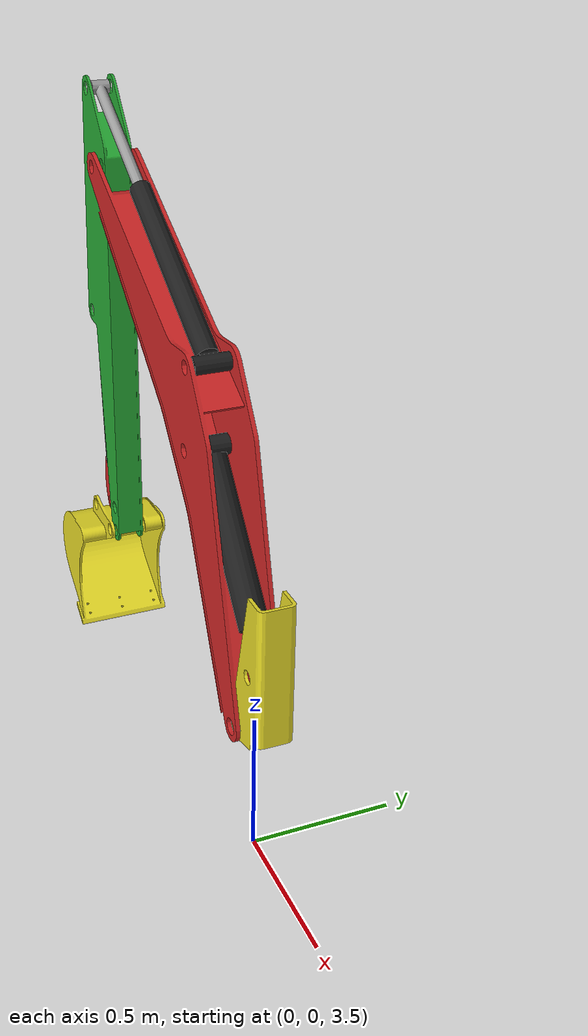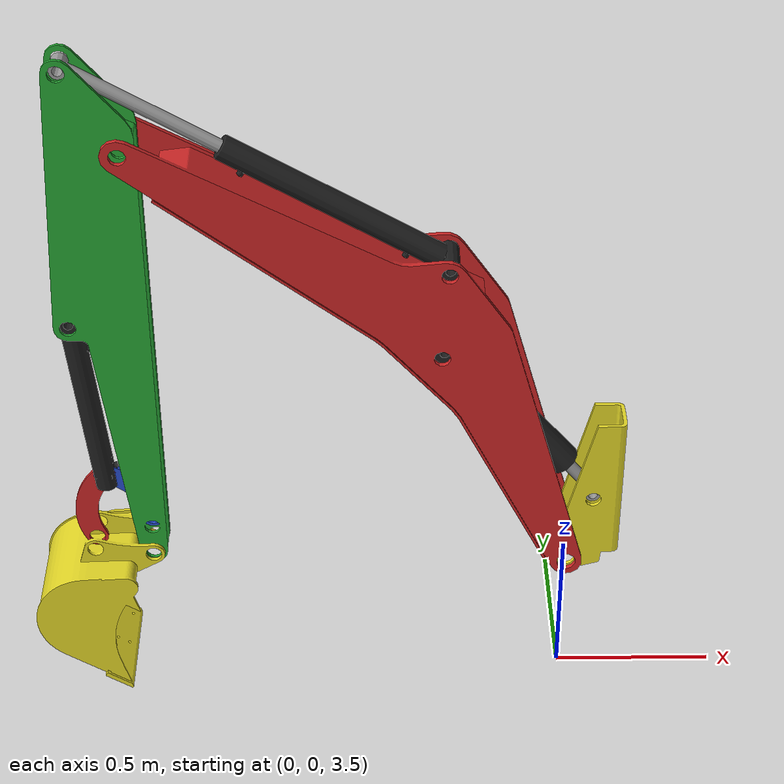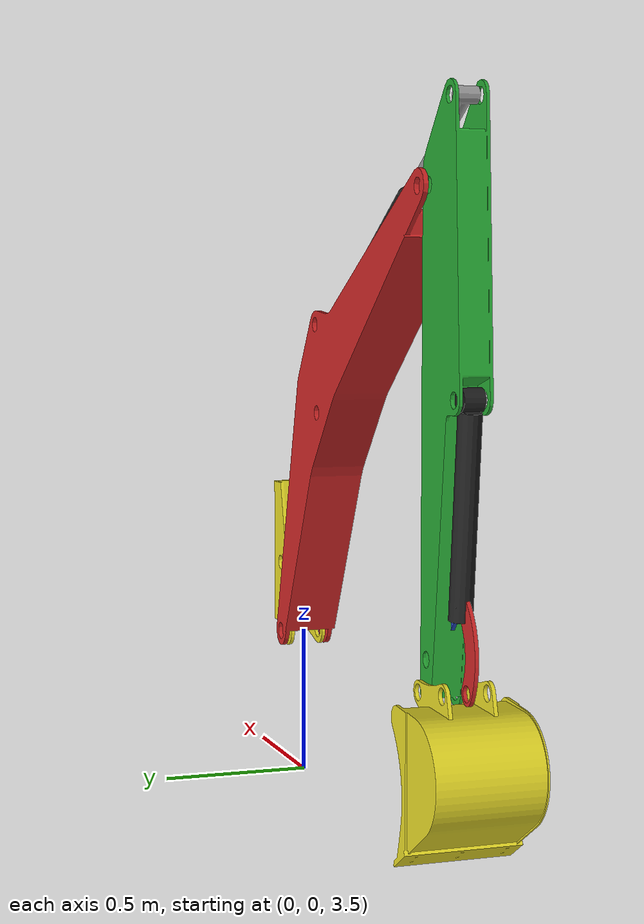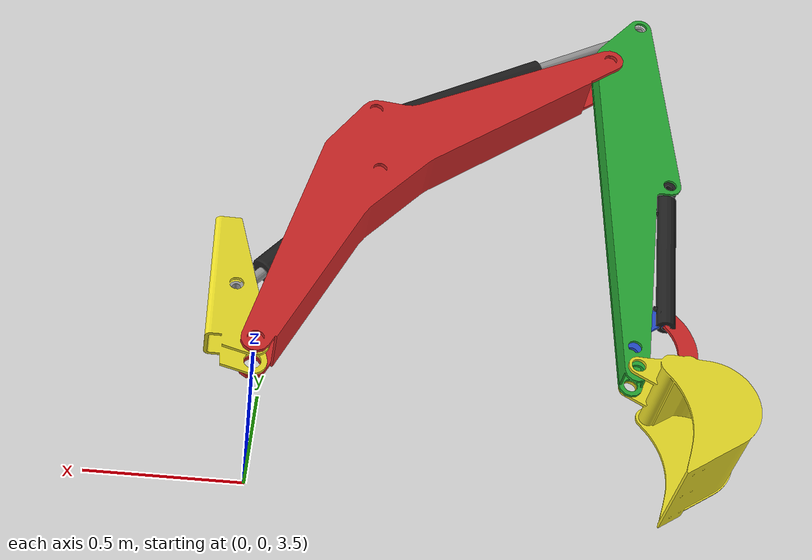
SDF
<?xml version="1.0" ?>
<sdf version='1.5'>
  <model name='backhoe_arm_assembly'>
    <pose>0 0 4  0 0 0</pose>

  <link name="konsol">
     <inertial>
        <mass></mass>
        <inertia>
            <ixx></ixx>
            <iyy></iyy>
            <izz></izz>
        </inertia>
     </inertial>
     <pose>0 0 0 0 0 0</pose>
     <collision name="collision1">
       <pose>0.03 0 0 0 0 0</pose>
       <geometry>
         <box>
           <size> 0.160 0.130 0.100 </size>
         </box>
       </geometry>
     </collision>
     <collision name="collision2">
       <pose>0.10 0 0.250 0 0 0</pose>
       <geometry>
         <box>
           <size> 0.1 0.130 0.450 </size>
         </box>
       </geometry>
     </collision>
     <visual name="visual">
       <pose>0 0 0 0 0 0</pose>
       <geometry>
         <mesh>
           <uri>model://backhoe/meshes/konsol.stl</uri>
           <scale>0.001 0.001 0.001</scale>
         </mesh>
       </geometry>
         <material>
           <script>
             <name>Gazebo/Yellow</name>
           </script>
         </material>
     </visual>
   </link>

  <link name="arm1">
     <pose>0 0 0 0 0 0</pose>

     <collision name="collision_base">
       <pose> -0.2 0 0.5 0 -0.349065 0</pose>
        <geometry>
         <box>
           <size> 0.20 0.150 1.10 </size>
         </box>
       </geometry>
     </collision>

     <collision name="collision_circle">
       <pose> -0.40 0 0.95 1.570796326 0  0</pose>
       <geometry>
         <cylinder>
              <radius>0.2</radius>
              <length>0.150</length>
         </cylinder>
       </geometry>
     </collision>

     <collision name="collision_base">
       <pose> -0.80 0 1.20 0 -1.047197551 0</pose>
        <geometry>
         <box>
           <size> 0.150 0.150 1.20 </size>
         </box>
       </geometry>
     </collision>

     <visual name="visual">
       <pose>0 0 0 3.1415926  -0.462512251778  0</pose>
       <geometry>
         <mesh>
           <uri>model://backhoe/meshes/arm1.dae</uri>
         </mesh>
       </geometry>
         <material>
           <script>
             <name>Gazebo/Red</name>
           </script>
         </material>
     </visual>
   </link>

  <link name="arm2">

   <pose> -1.29972 0 1.47750 0 0 0</pose>

    <collision name="collision1">
       <pose>0 0 -0.4 0 0 0</pose>
       <geometry>
         <box>
           <size> 0.1 0.15 1.0 </size>
         </box>
       </geometry>
     </collision>

    <collision name="collision2">
       <pose>-0.08 0 -1 0  -0.174530 0</pose>
       <geometry>
         <box>
           <size> 0.1 0.15 1.0 </size>
         </box>
       </geometry>
     </collision>

    <collision name="collision3">
       <pose> -0.15 0 -0.2 0 0 0</pose>
       <geometry>
         <box>
           <size> 0.2 0.15 0.9 </size>
         </box>
       </geometry>
     </collision>

     <visual name="visual">
       <pose> 0 0 0 0 -1.5707960 0</pose>
       <geometry>/
         <mesh>
           <uri>model://backhoe/meshes/arm2.stl</uri>
         </mesh>
       </geometry>
         <material>
           <script>
             <name>Gazebo/Green</name>
           </script>
         </material>
     </visual>

  </link>

  <link name="skovl">
    <pose>   -1.29972 0 0.1375 3.1415927 0.89448124 0</pose>

    <collision name="collision">
       <pose> 0 0 0.1 0  0.26179938 0</pose>
       <geometry>
         <box>
           <size> 0.15 0.02 0.32 </size>
         </box>
       </geometry>
     </collision>

    <visual name="visual">
        <geometry>
           <mesh>
             <uri>model://backhoe/meshes/skovl.stl</uri>
           </mesh>
        </geometry>
        <material>
          <script>
             <name>Gazebo/Blue</name>
          </script>
        </material>
   </visual>

  </link>

  <link name="nedre">
      <pose>-1.48072 0 0.0625 3.1415927 -2.17729824186292 0  </pose>
      <visual name="visual">
        <geometry>
           <mesh>
             <uri>model://backhoe/meshes/nedre.stl</uri>
           </mesh>
        </geometry>
        <material>
          <script>
             <name>Gazebo/Red</name>
          </script>
        </material>
       </visual>

       <collision name="collision">
          <pose>   </pose>
          <geometry>
             <box>
                <size> 0.100 0.020 0.350 </size>
             </box>
          </geometry>
       </collision>

  </link>

  <link name="shovel">
      <pose>-1.29972 0 0.0375  -1.5707960  0 0 </pose>
       <!-- axis inversion put -z value in 2 column and y value in 3rd column -->
       <collision name="collision">
          <pose>-0.175 0.25 0 0 0 0 </pose>
          <geometry>
             <box>
                <size> 0.400 0.5  0.350 </size>
             </box>
          </geometry>
       </collision>

     <visual name="visual">
        <pose> 0 0 0 0 0 0</pose>
        <geometry>
           <mesh>
             <uri>model://backhoe/meshes/shovel.stl</uri>
             <scale>0.001 0.001 0.001 </scale>
           </mesh>
        </geometry>
        <material>
          <script>
             <name>Gazebo/Yellow</name>
          </script>
        </material>
       </visual>

  </link>

<!--

================
Acutators
===============

-->

    <link name="cylinder1">
      <pose>-0.3941 0 0.79256 0 -2.26892802 0</pose>
      <collision name="collision">
        <pose>-0.295 0 0 0 -1.5708 0</pose>
        <geometry>
          <cylinder>
            <radius>0.05</radius>
            <length>0.59</length>
          </cylinder>
        </geometry>
      </collision>
      <visual name="visual">
        <geometry>
            <mesh>
             <uri>model://backhoe/meshes/cylinder1.stl</uri>
           </mesh>
        </geometry>
        <material>
          <script>
            <name>Gazebo/Black</name>
          </script>
        </material>
      </visual>
    </link>

    <link name="rod1">
      <pose>0.076 0 0.2325 0 -0.6982928 0</pose>
      <collision name="collision">
        <pose>0 0 0.280 0 0 0</pose>
        <geometry>
          <cylinder>
            <radius>0.022</radius>
            <length>0.560</length>
          </cylinder>
        </geometry>
      </collision>
      <visual name="visual">
        <geometry>
            <mesh>
             <uri>model://backhoe/meshes/rod1.stl</uri>
           </mesh>
        </geometry>
        <material>
          <script>
            <name>Gazebo/Grey</name>
          </script>
        </material>
      </visual>
    </link>

    <link name="cylinder2">
      <pose> -0.3805 0 1.079  0 -1.0369422 0</pose>
      <collision name="collision">
        <pose>0 0 0.375 0 0 0</pose>
        <geometry>
          <cylinder>
            <radius>0.04</radius>
            <length>0.750</length>
          </cylinder>
        </geometry>
      </collision>
      <visual name="visual">
        <geometry>
            <mesh>
             <uri>model://backhoe/meshes/cylinder2.stl</uri>
           </mesh>
        </geometry>
        <material>
          <script>
            <name>Gazebo/Black</name>
          </script>
        </material>
      </visual>
    </link>

    <link name="rod2">
      <pose>-1.44971 0 1.7125 0 -4.1785349 0</pose>
      <collision name="collision">
        <pose> 0 0 0.350 0 0 0 </pose>
        <geometry>
          <cylinder>
            <radius>0.022</radius>
            <length>0.7</length>
          </cylinder>
        </geometry>
      </collision>
      <visual name="visual">
        <pose>0 0 0 0 0 0 </pose>
        <geometry>
            <mesh>
             <uri>model://backhoe/meshes/rod2.stl</uri>
           </mesh>
        </geometry>
        <material>
          <script>
            <name>Gazebo/Grey</name>
          </script>
        </material>
      </visual>
    </link>

    <link name="cylinder3">
      <pose> -1.49612 0 0.88350 0 -3.24107642 0 </pose>
      <collision name="collision">
        <pose>0 0 0.3125 0 0 0</pose>
        <geometry>
          <cylinder>
            <radius>0.04</radius>
            <length>0.625</length>
          </cylinder>
        </geometry>
      </collision>
      <visual name="visual">
        <geometry>
            <mesh>
             <uri>model://backhoe/meshes/cylinder3.stl</uri>
           </mesh>
        </geometry>
        <material>
          <script>
            <name>Gazebo/Black</name>
          </script>
        </material>
      </visual>
    </link>

    <link name="rod3">
      <pose>-1.438 0 0.309 0 -0.099483767 0</pose>
      <collision name="collision">
        <pose> 0 0 0.2275 0 0 0</pose>
        <geometry>
          <cylinder>
            <radius>0.015</radius>
            <length>0.475</length>
          </cylinder>
        </geometry>
      </collision>
      <visual name="visual">
        <geometry>
            <mesh>
             <uri>model://backhoe/meshes/rod3.stl</uri>
           </mesh>
        </geometry>
        <material>
          <script>
            <name>Gazebo/Grey</name>
          </script>
        </material>
      </visual>
    </link>

<!--

===========================================
 Prismatic  JOINTS
===========================================
-->

    <joint name='cylinder1_rod1' type='prismatic'>
      <pose>0 0 0.0 0 0 0</pose>
      <child>cylinder1</child>
      <parent>rod1</parent>
      <axis>
        <xyz>-1 0 0</xyz>
        <limit>
          <lower>-0.3</lower>
          <upper>0.147</upper>
          <effort>10000</effort>
          <velocity>0</velocity>
        </limit>
        <dynamics>
          <spring_reference>0</spring_reference>
          <spring_stiffness>0</spring_stiffness>
          <damping>30</damping>
        </dynamics>
        <use_parent_model_frame>0</use_parent_model_frame>
      </axis>
        <physics>
          <ode>
            <implicit_spring_damper>1</implicit_spring_damper>
          </ode>
        </physics>
    </joint>

    <joint name='cylinder2_rod2' type='prismatic'>
      <pose>0 0 0.0 0 0 0</pose>
      <child>cylinder2</child>
      <parent>rod2</parent>
      <axis>
        <xyz>0 0 1</xyz>
        <limit>
          <lower>-0.0168</lower>
          <upper>0.43925</upper>
          <effort>10000</effort>
          <velocity>0</velocity>
        </limit>
        <dynamics>
          <spring_reference>0</spring_reference>
          <spring_stiffness>0</spring_stiffness>
          <damping>30</damping>
        </dynamics>
        <use_parent_model_frame>0</use_parent_model_frame>
      </axis>
        <physics>
          <ode>
            <implicit_spring_damper>1</implicit_spring_damper>
          </ode>
        </physics>
    </joint>

    <joint name='cylinder3_rod3' type='prismatic'>
      <pose>0 0 0.0 0 0 0</pose>
      <child>cylinder3</child>
      <parent>rod3</parent>
      <axis>
        <xyz>0 0 1</xyz>
        <limit>
          <lower>-0.3755</lower>
          <upper>-0.01</upper>
          <effort>10000</effort>
          <velocity>0</velocity>
        </limit>
        <dynamics>
          <spring_reference>0</spring_reference>
          <spring_stiffness>0</spring_stiffness>
          <damping>30</damping>
        </dynamics>
        <use_parent_model_frame>0</use_parent_model_frame>
      </axis>
        <physics>
          <ode>
            <implicit_spring_damper>1</implicit_spring_damper>
          </ode>
        </physics>
    </joint>

<!--
===========================================
 Revolute  JOINTS
===========================================
-->

    <joint name='world' type='revolute'>
      <pose>0 0 0 0 0 0</pose>
      <child>konsol</child>
      <parent>world</parent>
      <axis>
        <xyz>0 1 0</xyz>
        <limit>
          <lower>0</lower>
          <upper>0</upper>
          <effort>0</effort>
          <velocity>0</velocity>
        </limit>
        <dynamics>
          <spring_reference>0</spring_reference>
          <spring_stiffness>0</spring_stiffness>
        </dynamics>
        <use_parent_model_frame>0</use_parent_model_frame>
      </axis>
    </joint>

    <joint name='Konsol_arm1' type='revolute'>
      <pose>0 0 0 0 0 0</pose>
      <child>arm1</child>
      <parent>konsol</parent>
      <axis>
        <xyz>0 1 0</xyz>
        <limit>
          <lower>-180</lower>
          <upper>180</upper>
          <effort>0</effort>
          <velocity>0</velocity>
        </limit>
        <dynamics>
          <spring_reference>0</spring_reference>
          <spring_stiffness>0</spring_stiffness>
          <damping>1</damping>
        </dynamics>
        <use_parent_model_frame>0</use_parent_model_frame>
      </axis>
        <physics>
          <ode>
            <implicit_spring_damper>1</implicit_spring_damper>
          </ode>
        </physics>
    </joint>

    <joint name='arm2_arm1' type='revolute'>
      <pose> 0 0 0 0 0 0</pose>
      <child>arm2</child>
      <parent>arm1</parent>
      <axis>
        <xyz>0 1 0</xyz>
        <limit>
          <lower>-180</lower>
          <upper>180</upper>
          <effort>0</effort>
          <velocity>0</velocity>
        </limit>
        <dynamics>
          <spring_reference>0</spring_reference>
          <spring_stiffness>0</spring_stiffness>
          <damping>1</damping>
        </dynamics>
        <use_parent_model_frame>0</use_parent_model_frame>
      </axis>
        <physics>
          <ode>
            <implicit_spring_damper>1</implicit_spring_damper>
          </ode>
        </physics>
    </joint>

    <joint name='Konsol_rod1' type='revolute'>
      <pose> 0 0 0 0 0 0 </pose>
      <child>rod1</child>
      <parent>konsol</parent>
      <axis>
        <xyz>0 1 0</xyz>
        <limit>
          <lower>-180</lower>
          <upper>180</upper>
          <effort>0</effort>
          <velocity>0</velocity>
        </limit>
        <dynamics>
          <spring_reference>0</spring_reference>
          <spring_stiffness>0</spring_stiffness>
          <damping>1</damping>
        </dynamics>
        <use_parent_model_frame>0</use_parent_model_frame>
      </axis>
        <physics>
          <ode>
            <implicit_spring_damper>1</implicit_spring_damper>
          </ode>
        </physics>
    </joint>

    <joint name='arm1_cylinder1' type='revolute'>
      <pose> 0 0 0 0 0 0 </pose>
      <child>cylinder1</child>
      <parent>arm1</parent>
      <axis>
        <xyz>0 1 0</xyz>
        <limit>
          <lower>-180</lower>
          <upper>180</upper>
          <effort>0</effort>
          <velocity>0</velocity>
        </limit>
        <dynamics>
          <spring_reference>0</spring_reference>
          <spring_stiffness>0</spring_stiffness>
          <damping>1</damping>
        </dynamics>
        <use_parent_model_frame>0</use_parent_model_frame>
      </axis>
        <physics>
          <ode>
            <implicit_spring_damper>1</implicit_spring_damper>
          </ode>
        </physics>
    </joint>

    <joint name='arm2_rod2' type='revolute'>
      <pose> 0 0 0 0 0 0 </pose>
      <child>rod2</child>
      <parent>arm2</parent>
      <axis>
        <xyz>0 1 0</xyz>
        <limit>
          <lower>-180</lower>
          <upper>180</upper>
          <effort>0</effort>
          <velocity>0</velocity>
        </limit>
        <dynamics>
          <spring_reference>0</spring_reference>
          <spring_stiffness>0</spring_stiffness>
          <damping>1</damping>
        </dynamics>
        <use_parent_model_frame>0</use_parent_model_frame>
      </axis>
        <physics>
          <ode>
            <implicit_spring_damper>1</implicit_spring_damper>
          </ode>
        </physics>
    </joint>

    <joint name='arm1_cylinder2' type='revolute'>
      <pose> 0 0 0 0 0 0 </pose>
      <child>cylinder2</child>
      <parent>arm1</parent>
      <axis>
        <xyz>0 1 0</xyz>
        <limit>
          <lower>-180</lower>
          <upper>180</upper>
          <effort>0</effort>
          <velocity>0</velocity>
        </limit>
        <dynamics>
          <spring_reference>0</spring_reference>
          <spring_stiffness>0</spring_stiffness>
          <damping>1</damping>
        </dynamics>
        <use_parent_model_frame>0</use_parent_model_frame>
      </axis>
        <physics>
          <ode>
            <implicit_spring_damper>1</implicit_spring_damper>
          </ode>
        </physics>
    </joint>

    <joint name='arm2_cylinder3' type='revolute'>
      <pose> 0 0 0 0 0 0 </pose>
      <child>cylinder3</child>
      <parent>arm2</parent>
      <axis>
        <xyz>0 1 0</xyz>
        <limit>
          <lower>-180</lower>
          <upper>180</upper>
          <effort>0</effort>
          <velocity>0</velocity>
        </limit>
        <dynamics>
          <spring_reference>0</spring_reference>
          <spring_stiffness>0</spring_stiffness>
          <damping>1</damping>
        </dynamics>
        <use_parent_model_frame>0</use_parent_model_frame>
      </axis>
        <physics>
          <ode>
            <implicit_spring_damper>1</implicit_spring_damper>
          </ode>
        </physics>
    </joint>

    <joint name='nedre_rod3' type='revolute'>
      <pose> 0 0 0 0 0 0 </pose>
      <child>rod3</child>
      <parent>nedre</parent>
      <axis>
        <xyz>0 1 0</xyz>
        <limit>
          <lower>-180</lower>
          <upper>180</upper>
          <effort>0</effort>
          <velocity>0</velocity>
        </limit>
        <dynamics>
          <spring_reference>0</spring_reference>
          <spring_stiffness>0</spring_stiffness>
          <damping>1</damping>
        </dynamics>
        <use_parent_model_frame>0</use_parent_model_frame>
      </axis>
        <physics>
          <ode>
            <implicit_spring_damper>1</implicit_spring_damper>
          </ode>
        </physics>
    </joint>

    <joint name='skovl_rod3' type='revolute'>
      <pose> 0 0 0 0 0 0 </pose>
      <child>rod3</child>
      <parent>skovl</parent>
      <axis>
        <xyz>0 1 0</xyz>
        <limit>
          <lower>-180</lower>
          <upper>180</upper>
          <effort>0</effort>
          <velocity>0</velocity>
        </limit>
        <dynamics>
          <spring_reference>0</spring_reference>
          <spring_stiffness>0</spring_stiffness>
          <damping>1</damping>
        </dynamics>
        <use_parent_model_frame>0</use_parent_model_frame>
      </axis>
        <physics>
          <ode>
            <implicit_spring_damper>1</implicit_spring_damper>
          </ode>
        </physics>
    </joint>

    <joint name='arm2_shovel' type='revolute'>
      <pose> 0 0 0 0 0 0 </pose>
      <child>shovel</child>
      <parent>arm2</parent>
      <axis>
        <xyz>0 0 1</xyz>
        <limit>
          <lower>-180</lower>
          <upper>180</upper>
          <effort>0</effort>
          <velocity>0</velocity>
        </limit>
        <dynamics>
          <spring_reference>0</spring_reference>
          <spring_stiffness>0</spring_stiffness>
          <damping>1</damping>
        </dynamics>
        <use_parent_model_frame>0</use_parent_model_frame>
      </axis>
        <physics>
          <ode>
            <implicit_spring_damper>1</implicit_spring_damper>
          </ode>
        </physics>
    </joint>

    <joint name='arm2_skovl' type='revolute'>
      <pose> 0 0 0 0 0 0 </pose>
      <child>skovl</child>
      <parent>arm2</parent>
      <axis>
        <xyz>0 1 0</xyz>
        <limit>
          <lower>-180</lower>
          <upper>180</upper>
          <effort>0</effort>
          <velocity>0</velocity>
        </limit>
        <dynamics>
          <spring_reference>0</spring_reference>
          <spring_stiffness>0</spring_stiffness>
          <damping>1</damping>
        </dynamics>
        <use_parent_model_frame>0</use_parent_model_frame>
      </axis>
        <physics>
          <ode>
            <implicit_spring_damper>1</implicit_spring_damper>
          </ode>
        </physics>
    </joint>

    <joint name='shovel_nedre' type='revolute'>
      <pose> -0.181 0 0.025 0 0 0 </pose>
      <child>shovel</child>
      <parent>nedre</parent>
      <axis>
        <xyz>0 0 1</xyz>
        <limit>
          <lower>-180</lower>
          <upper>180</upper>
          <effort>0</effort>
          <velocity>0</velocity>
        </limit>
        <dynamics>
          <spring_reference>0</spring_reference>
          <spring_stiffness>0</spring_stiffness>
          <damping>1</damping>
        </dynamics>
        <use_parent_model_frame>0</use_parent_model_frame>
      </axis>
        <physics>
          <ode>
            <implicit_spring_damper>1</implicit_spring_damper>
          </ode>
        </physics>
    </joint>

</model>
</sdf>
